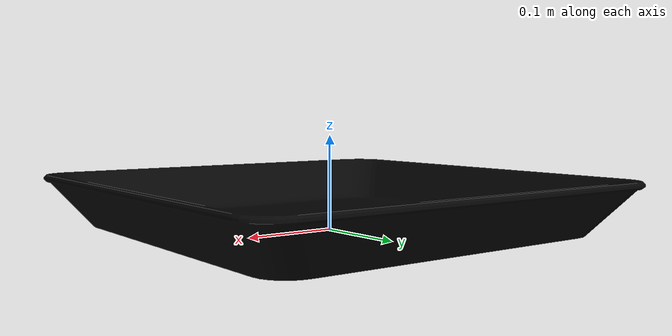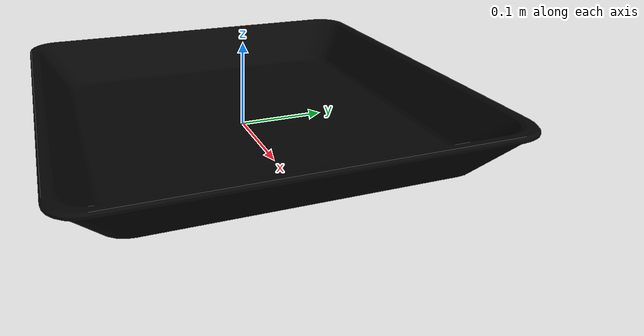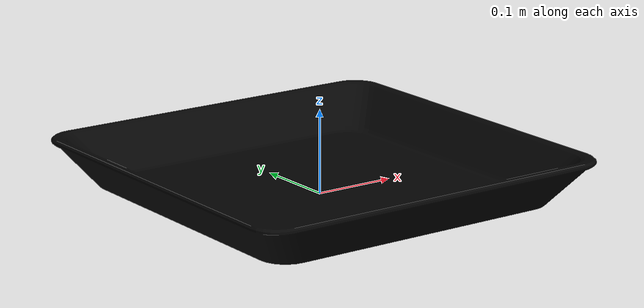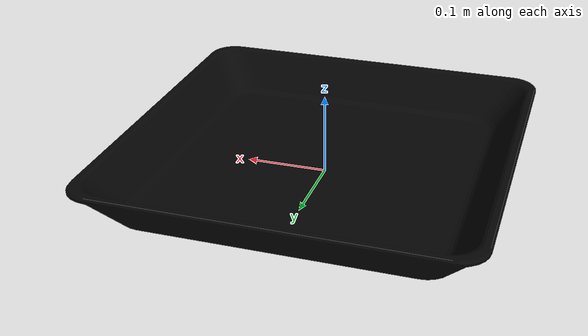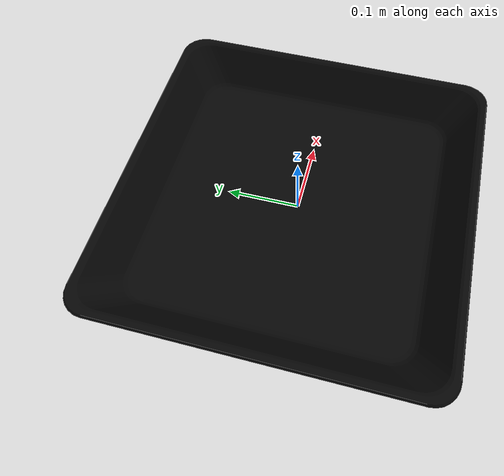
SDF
<?xml version="1.0" ?>
<sdf version="1.6">
    <model name="tray_rmf">
        <link name="tray_link">
            <inertial><mass>0.4</mass><inertia><ixx>0.01</ixx><iyy>0.01</iyy><izz>0.02</izz></inertia></inertial>
                        <visual name="visual_0">
                <geometry><mesh><uri>model://tray_rmf/meshes/tray_rmf_0.obj</uri></mesh></geometry>
                <material><ambient>0.016 0.016 0.016 1.000</ambient><diffuse>0.016 0.016 0.016 1.000</diffuse><specular>0.2 0.2 0.2 1</specular></material>
            </visual>
            <collision name="cube007_collider_box">
                <pose>0.0 0.0 0.002951 0.0 0.0 0.0</pose>
                <geometry>
                    <box>
                        <size>0.469008 0.469008 0.005902</size>
                    </box>
                </geometry>
            </collision>
            <collision name="cube007_collider_box.001">
                <pose>0.209303 0.0 0.025803 0.0 -0.942211 0.0</pose>
                <geometry>
                    <box>
                        <size>0.074084 0.469008 0.012815</size>
                    </box>
                </geometry>
            </collision>
            <collision name="cube007_collider_box.002">
                <pose>0.0 -0.209303 0.025803 0.0 -0.942211 -1.570796</pose>
                <geometry>
                    <box>
                        <size>0.074084 0.469008 0.012815</size>
                    </box>
                </geometry>
            </collision>
            <collision name="cube007_collider_box.003">
                <pose>0.0 0.209303 0.025803 0.0 -0.942211 -4.712389</pose>
                <geometry>
                    <box>
                        <size>0.074084 0.469008 0.012815</size>
                    </box>
                </geometry>
            </collision>
            <collision name="cube007_collider_box.004">
                <pose>-0.209303 0.0 0.025803 0.0 -0.942211 -3.141593</pose>
                <geometry>
                    <box>
                        <size>0.074084 0.469008 0.012815</size>
                    </box>
                </geometry>
            </collision>
        </link>
    </model>
</sdf>
